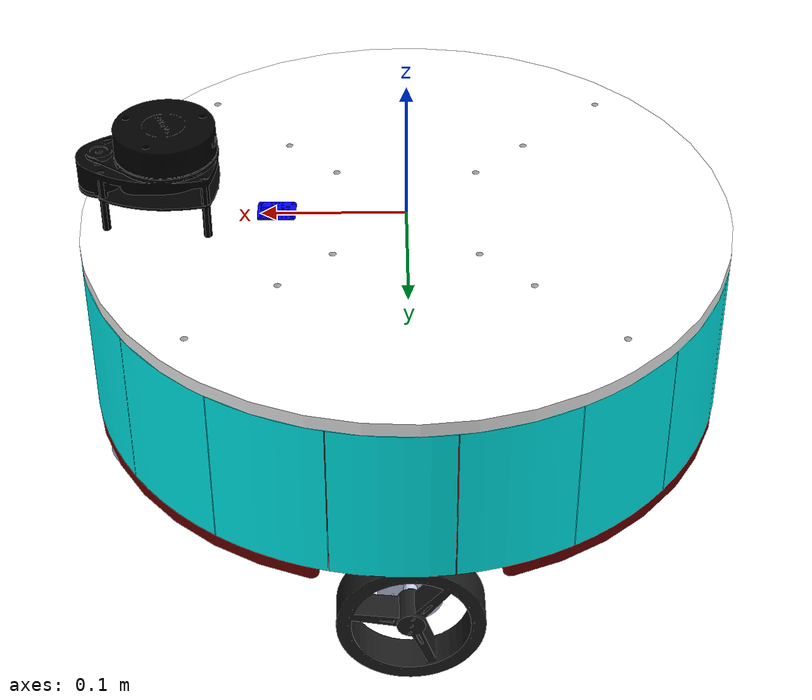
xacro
<robot name="mobile_robot" xmlns:xacro="https://www.ros.org/wiki/xacro" >

    <xacro:include filename="$(find nhatbot_description)/urdf/materials.xacro" />

    <link
    name="base_link">

    <inertial>
      <origin
        xyz="7.9994E-17 -1.5842E-18 -0.005"
        rpy="0 0 0" />
      <mass
        value="1.5875" />
      <inertia
        ixx="0.020119"
        ixy="-1.7258E-07"
        ixz="2.3337E-18"
        iyy="0.020108"
        iyz="7.9887E-19"
        izz="0.0402" />
    </inertial>
    <visual>
      <origin
        xyz="0 0 0"
        rpy="0 0 0" />
      <geometry>
        <mesh
          filename="package://nhatbot_description/meshes/base_link.STL" />
      </geometry>
      <material
        name="">
        <color
          rgba="255 255 255 0.8" />
      </material>
    </visual>
    <collision>
      <origin
        xyz="0 0 0"
        rpy="0 0 0" />
      <geometry>
        <mesh
          filename="package://nhatbot_description/meshes/base_link.STL" />
      </geometry>
    </collision>
  </link>

    <!-- Create wheel right -->

    <link
    name="Left_Link">
    <inertial>
      <origin
        xyz="2.56580471721162E-07 -0.00251496056873571 0.000586346785237397"
        rpy="0 0 0" />
      <mass
        value="0.0892945801008747" />
      <inertia
        ixx="8.11249890562634E-05"
        ixy="3.37277796324178E-11"
        ixz="-2.23479404350853E-09"
        iyy="0.000153384365583778"
        iyz="5.41431659170738E-12"
        izz="8.11385516632443E-05" />
    </inertial>
    <visual>
      <origin
        xyz="0 0 0"
        rpy="0 0 0" />
      <geometry>
        <mesh
          filename="package://nhatbot_description/meshes/Left_Link.STL" />
      </geometry>
      <material
        name="">
        <color
          rgba="0.109803921568627 0.109803921568627 0.109803921568627 1" />
      </material>
    </visual>
    <collision>
      <origin
        xyz="0 0 0"
        rpy="0 0 0" />
      <geometry>
        <mesh
          filename="package://nhatbot_description/meshes/Left_Link.STL" />
      </geometry>
    </collision>
  </link>
  <joint
    name="Left_Joint"
    type="continuous">
    <origin
      xyz="4.6243E-05 0.20855 -0.18309"
      rpy="0 0 0" />
    <parent
      link="base_link" />
    <child
      link="Left_Link" />
    <axis
      xyz="0 1 0" />
    <dynamics
      damping="1"
      friction="0" />
  </joint>
  <link
    name="Right_Link">
    <inertial>
      <origin
        xyz="2.56580471804097E-07 0.0125149605687355 4.11888338783251E-08"
        rpy="0 0 0" />
      <mass
        value="0.0892945801008746" />
      <inertia
        ixx="8.11249890562634E-05"
        ixy="-3.37277796322769E-11"
        ixz="-2.23479404353763E-09"
        iyy="0.000153384365583778"
        iyz="-5.41431658866222E-12"
        izz="8.11385516632442E-05" />
    </inertial>
    <visual>
      <origin
        xyz="0 0 0"
        rpy="0 0 0" />
      <geometry>
        <mesh
          filename="package://nhatbot_description/meshes/Right_Link.STL" />
      </geometry>
      <material
        name="">
        <color
          rgba="0.109803921568627 0.109803921568627 0.109803921568627 1" />
      </material>
    </visual>
    <collision>
      <origin
        xyz="0 0 0"
        rpy="0 0 0" />
      <geometry>
        <mesh
          filename="package://nhatbot_description/meshes/Right_Link.STL" />
      </geometry>
    </collision>
  </link>
  <joint
    name="Right_Joint"
    type="continuous">
    <origin
      xyz="4.6243E-05 -0.21855 -0.1825"
      rpy="0 0 0" />
    <parent
      link="base_link" />
    <child
      link="Right_Link" />
    <axis
      xyz="0 -1 0" />
  </joint>
  <link
    name="Lidar_Link">
    <inertial>
      <origin
        xyz="4978007318528.8 -10729112138308 -187717557112.41"
        rpy="0 0 0" />
      <mass
        value="1.95351824724178E+20" />
      <inertia
        ixx="1.49963892672428E+45"
        ixy="6.95577504852059E+44"
        ixz="1.2169889577998E+43"
        iyy="3.23187385688887E+44"
        iyz="-2.62297947026234E+43"
        izz="1.821908474493E+45" />
    </inertial>
    <visual>
      <origin
        xyz="0 0 0"
        rpy="0 0 0" />
      <geometry>
        <mesh
          filename="package://nhatbot_description/meshes/Lidar_Link.STL" />
      </geometry>
      <material
        name="">
        <color
          rgba="0 0 0 1" />
      </material>
    </visual>
    <collision>
      <origin
        xyz="0 0 0"
        rpy="0 0 0" />
      <geometry>
        <mesh
          filename="package://nhatbot_description/meshes/Lidar_Link.STL" />
      </geometry>
    </collision>
  </link>
  <joint
    name="Lidar_Joint"
    type="fixed">
    <origin
      xyz="0.16304 -0.0026486 0.0705"
      rpy="0 0 0" />
    <parent
      link="base_link" />
    <child
      link="Lidar_Link" />
    <axis
      xyz="0 0 0" />

  </joint>
  <link
    name="IMU_Link">
    <inertial>
      <origin
        xyz="0.000414693990674134 -9.62841896520773E-05 -0.000586751245583272"
        rpy="0 0 0" />
      <mass
        value="0.000983130183652038" />
      <inertia
        ixx="2.72841472066427E-08"
        ixy="3.55358217078538E-10"
        ixz="1.83406122618532E-11"
        iyy="4.80392806824561E-08"
        iyz="1.51853652206049E-12"
        izz="7.48563776021965E-08" />
    </inertial>
    <visual>
      <origin
        xyz="0 0 0"
        rpy="0 0 0" />
      <geometry>
        <mesh
          filename="package://nhatbot_description/meshes/IMU_Link.STL" />
      </geometry>
      <material
        name="">
        <color
          rgba="0 0 255 1" />
      </material>
    </visual>
    <collision>
      <origin
        xyz="0 0 0"
        rpy="0 0 0" />
      <geometry>
        <mesh
          filename="package://nhatbot_description/meshes/IMU_Link.STL" />
      </geometry>
    </collision>
  </link>
  <joint
    name="IMU_Joint"
    type="fixed">
    <origin
      xyz="0.089735 -0.0014712 0.00165"
      rpy="0 0 0" />
    <parent
      link="base_link" />
    <child
      link="IMU_Link" />
    <axis
      xyz="0 0 0" />
  </joint>
  <link
    name="Foot_Link">
    <inertial>
      <origin
        xyz="0.00279614126296664 4.31703021974476E-08 0.000369170534598178"
        rpy="0 0 0" />
      <mass
        value="2.16979851265338" />
      <inertia
        ixx="0.0223726281861936"
        ixy="-1.77275151346262E-12"
        ixz="6.45574431107625E-13"
        iyy="0.020240452587419"
        iyz="-6.42544904571654E-14"
        izz="0.0425428642557266" />
    </inertial>
    <visual>
      <origin
        xyz="0 0 0"
        rpy="0 0 0" />
      <geometry>
        <mesh
          filename="package://nhatbot_description/meshes/Foot_Link.STL" />
      </geometry>
      <material
        name="">
        <color
          rgba="0.435294117647059 0 0 1" />
      </material>
    </visual>
    <collision>
      <origin
        xyz="0 0 0"
        rpy="0 0 0" />
      <geometry>
        <mesh
          filename="package://nhatbot_description/meshes/Foot_Link.STL" />
      </geometry>
    </collision>
  </link>
  <joint
    name="Foot_joint"
    type="fixed">
    <origin
      xyz="4.6243E-05 0 -0.14"
      rpy="0 0 0" />
    <parent
      link="base_link" />
    <child
      link="Foot_Link" />
    <axis
      xyz="0 0 1" />
  </joint>
  <link
    name="Box_Link">
    <inertial>
      <origin
        xyz="-0.223593326666151 -0.00821017598167047 1.38777878078145E-17"
        rpy="0 0 0" />
      <mass
        value="1.93259283953463" />
      <inertia
        ixx="0.00344200801128419"
        ixy="-4.00341652190273E-17"
        ixz="7.86292357789957E-19"
        iyy="0.0034420080112842"
        iyz="4.1857496761314E-19"
        izz="0.000994208482995775" />
    </inertial>
    <visual>
      <origin
        xyz="0 0 0"
        rpy="0 0 0" />
      <geometry>
        <mesh
          filename="package://nhatbot_description/meshes/Box_Link.STL" />
      </geometry>
      <material
        name="">
        <color
          rgba="0 1 1 1" />
      </material>
    </visual>
    <collision>
      <origin
        xyz="0 0 0"
        rpy="0 0 0" />
      <geometry>
        <mesh
          filename="package://nhatbot_description/meshes/Box_Link.STL" />
      </geometry>
    </collision>
  </link>
  <joint
    name="Box_Joint"
    type="fixed">
    <origin
      xyz="0.223593326666151 0.00821017598167089 0.0699999999999998"
      rpy="0 0 0" />
    <parent
      link="Foot_Link" />
    <child
      link="Box_Link" />
    <axis
      xyz="0 0 0" />
  </joint>
  <link
    name="LeftMotor_Link">
    <inertial>
      <origin
        xyz="-1.57757571021463E-17 0.00731223529023786 0.00148870756111859"
        rpy="0 0 0" />
      <mass
        value="0.218472479568782" />
      <inertia
        ixx="0.000287506174126785"
        ixy="-1.60753383341994E-20"
        ixz="-1.23336621420854E-21"
        iyy="6.02990383658385E-05"
        iyz="6.05020165488567E-08"
        izz="0.000284335337053971" />
    </inertial>
    <visual>
      <origin
        xyz="0 0 0"
        rpy="0 0 0" />
      <geometry>
        <mesh
          filename="package://nhatbot_description/meshes/LeftMotor_Link.STL" />
      </geometry>
      <material
        name="">
        <color
          rgba="0.792156862745098 0.819607843137255 0.933333333333333 1" />
      </material>
    </visual>
    <collision>
      <origin
        xyz="0 0 0"
        rpy="0 0 0" />
      <geometry>
        <mesh
          filename="package://nhatbot_description/meshes/LeftMotor_Link.STL" />
      </geometry>
    </collision>
  </link>
  <joint
    name="LeftMotor_Link"
    type="fixed">
    <origin
      xyz="0 0.120702484422015 -0.0425000000000002"
      rpy="0 0 0" />
    <parent
      link="Foot_Link" />
    <child
      link="LeftMotor_Link" />
    <axis
      xyz="0 0 0" />
  </joint>
  <link
    name="RightMotor_Link">
    <inertial>
      <origin
        xyz="-3.99796537775702E-17 -0.00731223529023786 0.00148870756111854"
        rpy="0 0 0" />
      <mass
        value="0.218472479568782" />
      <inertia
        ixx="0.000287506174126786"
        ixy="2.22008793306081E-20"
        ixz="-2.56696317113305E-21"
        iyy="6.02990383658385E-05"
        iyz="-6.05020165488951E-08"
        izz="0.000284335337053972" />
    </inertial>
    <visual>
      <origin
        xyz="0 0 0"
        rpy="0 0 0" />
      <geometry>
        <mesh
          filename="package://nhatbot_description/meshes/RightMotor_Link.STL" />
      </geometry>
      <material
        name="">
        <color
          rgba="0.792156862745098 0.819607843137255 0.933333333333333 1" />
      </material>
    </visual>
    <collision>
      <origin
        xyz="0 0 0"
        rpy="0 0 0" />
      <geometry>
        <mesh
          filename="package://nhatbot_description/meshes/RightMotor_Link.STL" />
      </geometry>
    </collision>
  </link>
  <joint
    name="RightMotor_Joint"
    type="fixed">
    <origin
      xyz="0 -0.120702484422014 -0.0424999999999996"
      rpy="0 0 0" />
    <parent
      link="Foot_Link" />
    <child
      link="RightMotor_Link" />
    <axis
      xyz="0 0 0" />
  </joint>
  <link
    name="Front_Caster_Link">
    <inertial>
      <origin
        xyz="0.00725674479853172 -8.08709894582268E-05 -0.0237937277867639"
        rpy="0 0 0" />
      <mass
        value="0.0437082059565773" />
      <inertia
        ixx="1.80786108044674E-05"
        ixy="1.93915052461112E-08"
        ixz="3.51041121049147E-06"
        iyy="1.98184107345125E-05"
        iyz="-3.91208137690429E-08"
        izz="7.73194436421823E-06" />
    </inertial>
    <visual>
      <origin
        xyz="0 0 0"
        rpy="0 0 0" />
      <geometry>
        <mesh
          filename="package://nhatbot_description/meshes/Front_Caster_Link.STL" />
      </geometry>
      <material
        name="">
        <color
          rgba="0.792156862745098 0.819607843137255 0.933333333333333 1" />
      </material>
    </visual>
    <collision>
      <origin
        xyz="0 0 0"
        rpy="0 0 0" />
      <geometry>
        <mesh
          filename="package://nhatbot_description/meshes/Front_Caster_Link.STL" />
      </geometry>
    </collision>
  </link>
  <joint
    name="Front_Caster_Joint"
    type="continuous">
    <origin
      xyz="0.19144 -1.3765E-05 -0.17494"
      rpy="0 0 0" />
    <parent
      link="base_link" />
    <child
      link="Front_Caster_Link" />
    <axis
      xyz="0 0 1" />
  </joint>
  <link
    name="After_Caster_Link">
    <inertial>
      <origin
        xyz="0 0 0"
        rpy="0 0 0" />
      <mass
        value="0" />
      <inertia
        ixx="0"
        ixy="0"
        ixz="0"
        iyy="0"
        iyz="0"
        izz="0" />
    </inertial>
    <visual>
      <origin
        xyz="0 0 0"
        rpy="0 0 0" />
      <geometry>
        <mesh
          filename="package://nhatbot_description/meshes/After_Caster_Link.STL" />
      </geometry>
      <material
        name="">
        <color
          rgba="1 1 1 1" />
      </material>
    </visual>
    <collision>
      <origin
        xyz="0 0 0"
        rpy="0 0 0" />
      <geometry>
        <mesh
          filename="package://nhatbot_description/meshes/After_Caster_Link.STL" />
      </geometry>
    </collision>
  </link>
  <joint
    name="After_Caster_Joint"
    type="continuous">
    <origin
      xyz="-0.191338002066182 0.000137281469252824 -0.174941715352257"
      rpy="0 0 0" />
    <parent
      link="base_link" />
    <child
      link="After_Caster_Link" />
    <axis
      xyz="0 0 1" />
    <joint_properties damping="1.0" friction="1.0"/>
  </joint>
  </robot>
